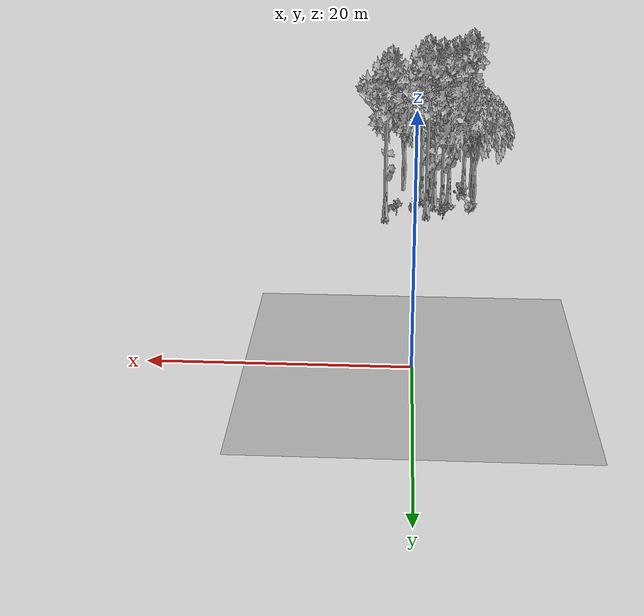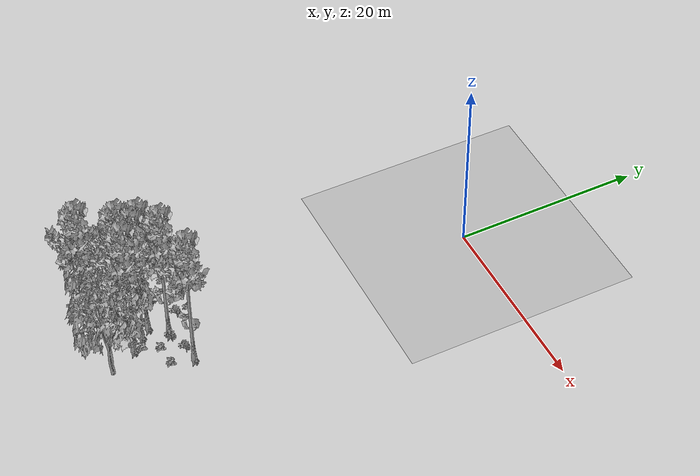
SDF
<sdf version="1.7">
 <world name="default">
  <model name="ground_plane">
   <static>1</static>
   <link name="link">
    <collision name="collision">
     <pose>-50 0 0 0 -0 0</pose>
     <geometry><plane><normal>0 0 1</normal><size>80 80</size></plane></geometry>
     <surface><contact><ode><min_depth>0.01</min_depth><max_vel>0</max_vel></ode></contact></surface>
    </collision>
    <visual name="grass">
     <cast_shadows>0</cast_shadows>
     <geometry>
      <mesh>
       <scale>0.46714285714285714 0.46714285714285714 0.1</scale>
       <uri>file://grass_plane/meshes/grass_plane.dae</uri>
      </mesh>
     </geometry>
    </visual>
   </link>
  </model>
  <model name="Tree 33">
   <static>1</static>
   <pose>0.6437556588866613 -39.039858020370275 0 1.57079 -0 0</pose>
   <link name="link">
    <collision name="collision">
     <geometry><mesh><scale>3.5 5 3.5</scale><uri>model://tree_2/meshes/tree_2.obj</uri></mesh></geometry>
    </collision>
    <visual name="visual">
     <geometry><mesh><scale>3.5 5 3.5</scale><uri>model://tree_2/meshes/tree_2.obj</uri></mesh></geometry>
    </visual>
   </link>
  </model>
  <model name="Tree 86">
   <static>1</static>
   <pose>-1.0918625220381841 -36.175728975216174 0 1.57079 -0 0</pose>
   <link name="link">
    <collision name="collision">
     <geometry><mesh><scale>3.5 5 3.5</scale><uri>model://tree_9/meshes/tree_9.obj</uri></mesh></geometry>
    </collision>
    <visual name="visual">
     <geometry><mesh><scale>3.5 5 3.5</scale><uri>model://tree_9/meshes/tree_9.obj</uri></mesh></geometry>
    </visual>
   </link>
  </model>
  <model name="Tree 127">
   <static>1</static>
   <pose>-3.879639672624755 -35.66690793864574 0 1.57079 -0 0</pose>
   <link name="link">
    <collision name="collision">
     <geometry><mesh><scale>3.5 5 3.5</scale><uri>model://tree_9/meshes/tree_9.obj</uri></mesh></geometry>
    </collision>
    <visual name="visual">
     <geometry><mesh><scale>3.5 5 3.5</scale><uri>model://tree_9/meshes/tree_9.obj</uri></mesh></geometry>
    </visual>
   </link>
  </model>
  <model name="Tree 149">
   <static>1</static>
   <pose>-2.3892252326973136 -34.80652365113634 0 1.57079 -0 0</pose>
   <link name="link">
    <collision name="collision">
     <geometry><mesh><scale>3.5 5 3.5</scale><uri>model://tree_9/meshes/tree_9.obj</uri></mesh></geometry>
    </collision>
    <visual name="visual">
     <geometry><mesh><scale>3.5 5 3.5</scale><uri>model://tree_9/meshes/tree_9.obj</uri></mesh></geometry>
    </visual>
   </link>
  </model>
  <model name="Tree 209">
   <static>1</static>
   <pose>-3.170573931471239 -33.83790023302722 0 1.57079 -0 0</pose>
   <link name="link">
    <collision name="collision">
     <geometry><mesh><scale>3.5 5 3.5</scale><uri>model://tree_9/meshes/tree_9.obj</uri></mesh></geometry>
    </collision>
    <visual name="visual">
     <geometry><mesh><scale>3.5 5 3.5</scale><uri>model://tree_9/meshes/tree_9.obj</uri></mesh></geometry>
    </visual>
   </link>
  </model>
  <model name="Tree 322">
   <static>1</static>
   <pose>-1.5661462147474765 -32.240169287623395 0 1.57079 -0 0</pose>
   <link name="link">
    <collision name="collision">
     <geometry><mesh><scale>3.5 5 3.5</scale><uri>model://tree_9/meshes/tree_9.obj</uri></mesh></geometry>
    </collision>
    <visual name="visual">
     <geometry><mesh><scale>3.5 5 3.5</scale><uri>model://tree_9/meshes/tree_9.obj</uri></mesh></geometry>
    </visual>
   </link>
  </model>
  <model name="Tree 360">
   <static>1</static>
   <pose>2.526123319284686 -31.28675250116464 0 1.57079 -0 0</pose>
   <link name="link">
    <collision name="collision">
     <geometry><mesh><scale>3.5 5 3.5</scale><uri>model://tree_9/meshes/tree_9.obj</uri></mesh></geometry>
    </collision>
    <visual name="visual">
     <geometry><mesh><scale>3.5 5 3.5</scale><uri>model://tree_9/meshes/tree_9.obj</uri></mesh></geometry>
    </visual>
   </link>
  </model>
  <model name="Tree 365">
   <static>1</static>
   <pose>-6.317116527198927 -33.277788661518116 0 1.57079 -0 0</pose>
   <link name="link">
    <collision name="collision">
     <geometry><mesh><scale>3.5 5 3.5</scale><uri>model://tree_2/meshes/tree_2.obj</uri></mesh></geometry>
    </collision>
    <visual name="visual">
     <geometry><mesh><scale>3.5 5 3.5</scale><uri>model://tree_2/meshes/tree_2.obj</uri></mesh></geometry>
    </visual>
   </link>
  </model>
  <model name="Tree 522">
   <static>1</static>
   <pose>-5.546433191116776 -39.034436654803535 0 1.57079 -0 0</pose>
   <link name="link">
    <collision name="collision">
     <geometry><mesh><scale>3.5 5 3.5</scale><uri>model://tree_9/meshes/tree_9.obj</uri></mesh></geometry>
    </collision>
    <visual name="visual">
     <geometry><mesh><scale>3.5 5 3.5</scale><uri>model://tree_9/meshes/tree_9.obj</uri></mesh></geometry>
    </visual>
   </link>
  </model>
  <model name="Tree 528">
   <static>1</static>
   <pose>-2.0871928954751695 -36.75572259726036 0 1.57079 -0 0</pose>
   <link name="link">
    <collision name="collision">
     <geometry><mesh><scale>3.5 5 3.5</scale><uri>model://tree_2/meshes/tree_2.obj</uri></mesh></geometry>
    </collision>
    <visual name="visual">
     <geometry><mesh><scale>3.5 5 3.5</scale><uri>model://tree_2/meshes/tree_2.obj</uri></mesh></geometry>
    </visual>
   </link>
  </model>
  <model name="Tree 639">
   <static>1</static>
   <pose>-6.348103606971328 -37.37045775556257 0 1.57079 -0 0</pose>
   <link name="link">
    <collision name="collision">
     <geometry><mesh><scale>3.5 5 3.5</scale><uri>model://tree_2/meshes/tree_2.obj</uri></mesh></geometry>
    </collision>
    <visual name="visual">
     <geometry><mesh><scale>3.5 5 3.5</scale><uri>model://tree_2/meshes/tree_2.obj</uri></mesh></geometry>
    </visual>
   </link>
  </model>
  <model name="Bush 8">
   <static>1</static>
   <pose>-2.18934883010742 -35.93289711324608 0 1.57079 -0 0</pose>
   <link name="link">
    <collision name="collision">
     <geometry><mesh><scale>2 2 2</scale><uri>model://bush_2/meshes/bush_2.obj</uri></mesh></geometry>
     <surface><contact><collide_without_contact>false</collide_without_contact></contact></surface>
    </collision>
    <visual name="visual">
     <geometry><mesh><scale>2 2 2</scale><uri>model://bush_2/meshes/bush_2.obj</uri></mesh></geometry>
    </visual>
   </link>
  </model>
  <model name="Bush 29">
   <static>1</static>
   <pose>-3.1645881737154156 -30.66610557797621 0 1.57079 -0 0</pose>
   <link name="link">
    <collision name="collision">
     <geometry><mesh><scale>2 2 2</scale><uri>model://bush_5/meshes/bush_5.obj</uri></mesh></geometry>
     <surface><contact><collide_without_contact>false</collide_without_contact></contact></surface>
    </collision>
    <visual name="visual">
     <geometry><mesh><scale>2 2 2</scale><uri>model://bush_5/meshes/bush_5.obj</uri></mesh></geometry>
    </visual>
   </link>
  </model>
  <model name="Bush 77">
   <static>1</static>
   <pose>-5.791140751122917 -32.18390275685364 0 1.57079 -0 0</pose>
   <link name="link">
    <collision name="collision">
     <geometry><mesh><scale>2 2 2</scale><uri>model://bush_0/meshes/bush_0.obj</uri></mesh></geometry>
     <surface><contact><collide_without_contact>false</collide_without_contact></contact></surface>
    </collision>
    <visual name="visual">
     <geometry><mesh><scale>2 2 2</scale><uri>model://bush_0/meshes/bush_0.obj</uri></mesh></geometry>
    </visual>
   </link>
  </model>
  <model name="Bush 92">
   <static>1</static>
   <pose>-0.4592510321574963 -32.31149464695571 0 1.57079 -0 0</pose>
   <link name="link">
    <collision name="collision">
     <geometry><mesh><scale>2 2 2</scale><uri>model://bush_5/meshes/bush_5.obj</uri></mesh></geometry>
     <surface><contact><collide_without_contact>false</collide_without_contact></contact></surface>
    </collision>
    <visual name="visual">
     <geometry><mesh><scale>2 2 2</scale><uri>model://bush_5/meshes/bush_5.obj</uri></mesh></geometry>
    </visual>
   </link>
  </model>
  <model name="Bush 123">
   <static>1</static>
   <pose>-2.4644371959496 -35.890588376416765 0 1.57079 -0 0</pose>
   <link name="link">
    <collision name="collision">
     <geometry><mesh><scale>2 2 2</scale><uri>model://bush_2/meshes/bush_2.obj</uri></mesh></geometry>
     <surface><contact><collide_without_contact>false</collide_without_contact></contact></surface>
    </collision>
    <visual name="visual">
     <geometry><mesh><scale>2 2 2</scale><uri>model://bush_2/meshes/bush_2.obj</uri></mesh></geometry>
    </visual>
   </link>
  </model>
  <model name="Bush 137">
   <static>1</static>
   <pose>-5.199014538557179 -37.926382304050904 0 1.57079 -0 0</pose>
   <link name="link">
    <collision name="collision">
     <geometry><mesh><scale>2 2 2</scale><uri>model://bush_4/meshes/bush_4.obj</uri></mesh></geometry>
     <surface><contact><collide_without_contact>false</collide_without_contact></contact></surface>
    </collision>
    <visual name="visual">
     <geometry><mesh><scale>2 2 2</scale><uri>model://bush_4/meshes/bush_4.obj</uri></mesh></geometry>
    </visual>
   </link>
  </model>
  <model name="Bush 240">
   <static>1</static>
   <pose>-5.2958546178724575 -37.13321738796428 0 1.57079 -0 0</pose>
   <link name="link">
    <collision name="collision">
     <geometry><mesh><scale>2 2 2</scale><uri>model://bush_2/meshes/bush_2.obj</uri></mesh></geometry>
     <surface><contact><collide_without_contact>false</collide_without_contact></contact></surface>
    </collision>
    <visual name="visual">
     <geometry><mesh><scale>2 2 2</scale><uri>model://bush_2/meshes/bush_2.obj</uri></mesh></geometry>
    </visual>
   </link>
  </model>
  <model name="Bush 251">
   <static>1</static>
   <pose>-0.33755102963821315 -33.70477144707185 0 1.57079 -0 0</pose>
   <link name="link">
    <collision name="collision">
     <geometry><mesh><scale>2 2 2</scale><uri>model://bush_2/meshes/bush_2.obj</uri></mesh></geometry>
     <surface><contact><collide_without_contact>false</collide_without_contact></contact></surface>
    </collision>
    <visual name="visual">
     <geometry><mesh><scale>2 2 2</scale><uri>model://bush_2/meshes/bush_2.obj</uri></mesh></geometry>
    </visual>
   </link>
  </model>
  <model name="Bush 345">
   <static>1</static>
   <pose>1.877141019159673 -33.52075467327697 0 1.57079 -0 0</pose>
   <link name="link">
    <collision name="collision">
     <geometry><mesh><scale>2 2 2</scale><uri>model://bush_2/meshes/bush_2.obj</uri></mesh></geometry>
     <surface><contact><collide_without_contact>false</collide_without_contact></contact></surface>
    </collision>
    <visual name="visual">
     <geometry><mesh><scale>2 2 2</scale><uri>model://bush_2/meshes/bush_2.obj</uri></mesh></geometry>
    </visual>
   </link>
  </model>
  <model name="Bush 538">
   <static>1</static>
   <pose>-3.9337780672930407 -34.066165002477376 0 1.57079 -0 0</pose>
   <link name="link">
    <collision name="collision">
     <geometry><mesh><scale>2 2 2</scale><uri>model://bush_2/meshes/bush_2.obj</uri></mesh></geometry>
     <surface><contact><collide_without_contact>false</collide_without_contact></contact></surface>
    </collision>
    <visual name="visual">
     <geometry><mesh><scale>2 2 2</scale><uri>model://bush_2/meshes/bush_2.obj</uri></mesh></geometry>
    </visual>
   </link>
  </model>
  <model name="Bush 578">
   <static>1</static>
   <pose>-1.1370729293508646 -35.346651700760646 0 1.57079 -0 0</pose>
   <link name="link">
    <collision name="collision">
     <geometry><mesh><scale>2 2 2</scale><uri>model://bush_2/meshes/bush_2.obj</uri></mesh></geometry>
     <surface><contact><collide_without_contact>false</collide_without_contact></contact></surface>
    </collision>
    <visual name="visual">
     <geometry><mesh><scale>2 2 2</scale><uri>model://bush_2/meshes/bush_2.obj</uri></mesh></geometry>
    </visual>
   </link>
  </model>
  <model name="Bush 610">
   <static>1</static>
   <pose>1.4192778035814229 -31.604315753292198 0 1.57079 -0 0</pose>
   <link name="link">
    <collision name="collision">
     <geometry><mesh><scale>2 2 2</scale><uri>model://bush_5/meshes/bush_5.obj</uri></mesh></geometry>
     <surface><contact><collide_without_contact>false</collide_without_contact></contact></surface>
    </collision>
    <visual name="visual">
     <geometry><mesh><scale>2 2 2</scale><uri>model://bush_5/meshes/bush_5.obj</uri></mesh></geometry>
    </visual>
   </link>
  </model>
 </world>
</sdf>
